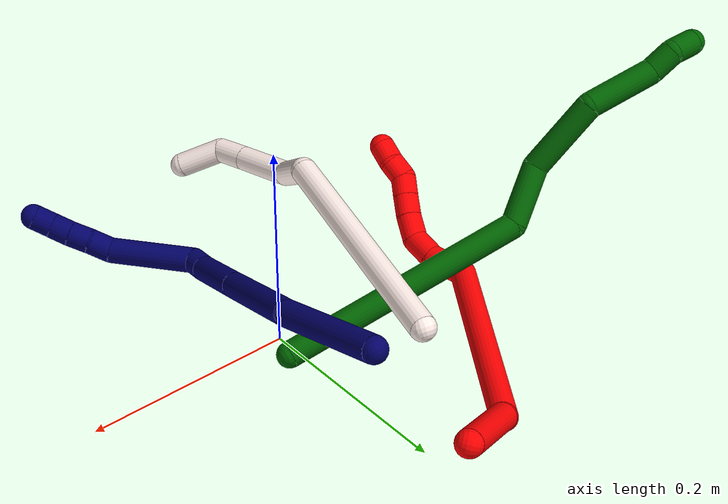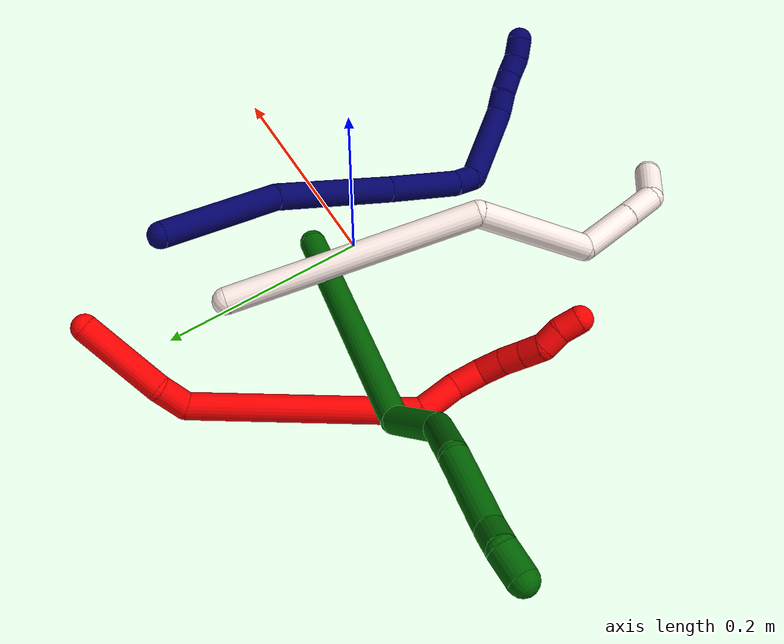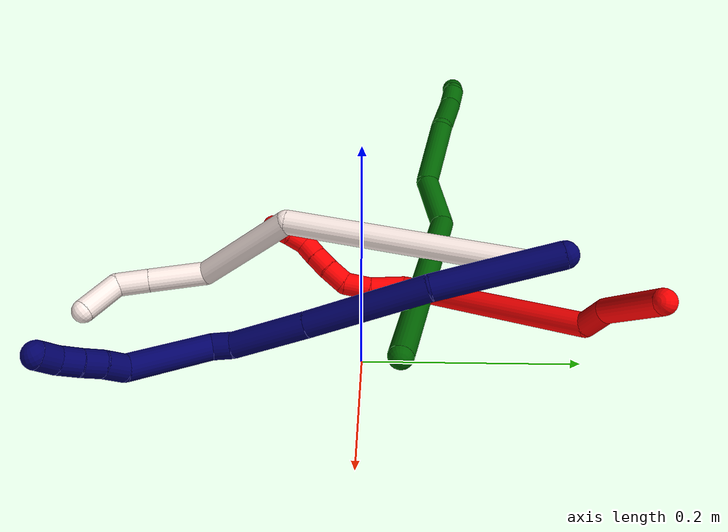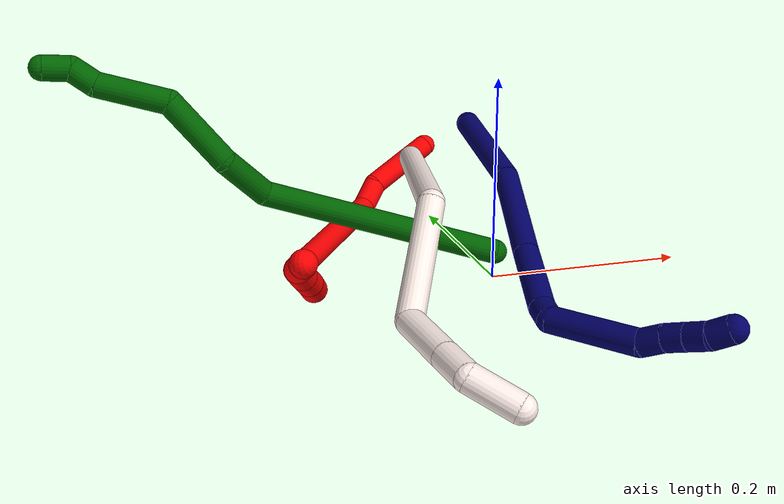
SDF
<sdf version="1.7">
 <world name="default">
  <model name="2">
   <static>0</static>
   <link name="2">
    <collision name="collision-cylinder-e_1_1_4">
     <pose>-0.031742 -0.020879 0.017692 0.867827 -0.859294 -0.41841</pose>
     <geometry><cylinder><radius>0.0125</radius><length>0.083821</length></cylinder></geometry>
     <surface>
      <friction><ode><mu>1.16</mu><mu2>1.16</mu2><slip1>0</slip1><slip2>0</slip2></ode></friction>
      <contact><ode><kp>1e+06</kp><kd>1</kd><max_vel>0</max_vel><min_depth>0.001</min_depth></ode></contact>
     </surface>
    </collision>
    <visual name="visual-cylinder-e_1_1_4">
     <pose>-0.031742 -0.020879 0.017692 0.867827 -0.859294 -0.41841</pose>
     <geometry><cylinder><radius>0.0125</radius><length>0.083821</length></cylinder></geometry>
     <material><ambient>1 0 0 1</ambient></material>
    </visual>
    <collision name="collision-cylinder-e_2_4_5">
     <pose>-0.078524 -0.044877 0.039244 0.679719 -1.25207 -0.500593</pose>
     <geometry><cylinder><radius>0.0125</radius><length>0.031674</length></cylinder></geometry>
     <surface>
      <friction><ode><mu>1.16</mu><mu2>1.16</mu2><slip1>0</slip1><slip2>0</slip2></ode></friction>
      <contact><ode><kp>1e+06</kp><kd>1</kd><max_vel>0</max_vel><min_depth>0.001</min_depth></ode></contact>
     </surface>
    </collision>
    <visual name="visual-cylinder-e_2_4_5">
     <pose>-0.078524 -0.044877 0.039244 0.679719 -1.25207 -0.500593</pose>
     <geometry><cylinder><radius>0.0125</radius><length>0.031674</length></cylinder></geometry>
     <material><ambient>1 0 0 1</ambient></material>
    </visual>
    <collision name="collision-cylinder-e_3_5_6">
     <pose>-0.161178 -0.126169 0.023517 1.8163 -0.698072 -0.872771</pose>
     <geometry><cylinder><radius>0.0125</radius><length>0.210394</length></cylinder></geometry>
     <surface>
      <friction><ode><mu>1.16</mu><mu2>1.16</mu2><slip1>0</slip1><slip2>0</slip2></ode></friction>
      <contact><ode><kp>1e+06</kp><kd>1</kd><max_vel>0</max_vel><min_depth>0.001</min_depth></ode></contact>
     </surface>
    </collision>
    <visual name="visual-cylinder-e_3_5_6">
     <pose>-0.161178 -0.126169 0.023517 1.8163 -0.698072 -0.872771</pose>
     <geometry><cylinder><radius>0.0125</radius><length>0.210394</length></cylinder></geometry>
     <material><ambient>1 0 0 1</ambient></material>
    </visual>
    <collision name="collision-cylinder-e_4_6_7">
     <pose>-0.239419 -0.211247 -0.010815 2.70367 -0.578225 -1.85699</pose>
     <geometry><cylinder><radius>0.0125</radius><length>0.038884</length></cylinder></geometry>
     <surface>
      <friction><ode><mu>1.16</mu><mu2>1.16</mu2><slip1>0</slip1><slip2>0</slip2></ode></friction>
      <contact><ode><kp>1e+06</kp><kd>1</kd><max_vel>0</max_vel><min_depth>0.001</min_depth></ode></contact>
     </surface>
    </collision>
    <visual name="visual-cylinder-e_4_6_7">
     <pose>-0.239419 -0.211247 -0.010815 2.70367 -0.578225 -1.85699</pose>
     <geometry><cylinder><radius>0.0125</radius><length>0.038884</length></cylinder></geometry>
     <material><ambient>1 0 0 1</ambient></material>
    </visual>
    <collision name="collision-cylinder-e_5_7_8">
     <pose>-0.256734 -0.226708 -0.034839 2.39667 -0.487305 -1.13334</pose>
     <geometry><cylinder><radius>0.0125</radius><length>0.02857</length></cylinder></geometry>
     <surface>
      <friction><ode><mu>1.16</mu><mu2>1.16</mu2><slip1>0</slip1><slip2>0</slip2></ode></friction>
      <contact><ode><kp>1e+06</kp><kd>1</kd><max_vel>0</max_vel><min_depth>0.001</min_depth></ode></contact>
     </surface>
    </collision>
    <visual name="visual-cylinder-e_5_7_8">
     <pose>-0.256734 -0.226708 -0.034839 2.39667 -0.487305 -1.13334</pose>
     <geometry><cylinder><radius>0.0125</radius><length>0.02857</length></cylinder></geometry>
     <material><ambient>1 0 0 1</ambient></material>
    </visual>
    <collision name="collision-cylinder-e_6_8_9">
     <pose>-0.26457 -0.24627 -0.049719 2.04156 -0.092674 -0.150971</pose>
     <geometry><cylinder><radius>0.0125</radius><length>0.024804</length></cylinder></geometry>
     <surface>
      <friction><ode><mu>1.16</mu><mu2>1.16</mu2><slip1>0</slip1><slip2>0</slip2></ode></friction>
      <contact><ode><kp>1e+06</kp><kd>1</kd><max_vel>0</max_vel><min_depth>0.001</min_depth></ode></contact>
     </surface>
    </collision>
    <visual name="visual-cylinder-e_6_8_9">
     <pose>-0.26457 -0.24627 -0.049719 2.04156 -0.092674 -0.150971</pose>
     <geometry><cylinder><radius>0.0125</radius><length>0.024804</length></cylinder></geometry>
     <material><ambient>1 0 0 1</ambient></material>
    </visual>
    <collision name="collision-cylinder-e_7_9_10">
     <pose>-0.266473 -0.267248 -0.059066 1.93013 -0.070788 -0.102163</pose>
     <geometry><cylinder><radius>0.0125</radius><length>0.021358</length></cylinder></geometry>
     <surface>
      <friction><ode><mu>1.16</mu><mu2>1.16</mu2><slip1>0</slip1><slip2>0</slip2></ode></friction>
      <contact><ode><kp>1e+06</kp><kd>1</kd><max_vel>0</max_vel><min_depth>0.001</min_depth></ode></contact>
     </surface>
    </collision>
    <visual name="visual-cylinder-e_7_9_10">
     <pose>-0.266473 -0.267248 -0.059066 1.93013 -0.070788 -0.102163</pose>
     <geometry><cylinder><radius>0.0125</radius><length>0.021358</length></cylinder></geometry>
     <material><ambient>1 0 0 1</ambient></material>
    </visual>
    <collision name="collision-cylinder-e_8_10_11">
     <pose>-0.267376 -0.286754 -0.06627 1.9187 -0.014569 -0.020781</pose>
     <geometry><cylinder><radius>0.0125</radius><length>0.020286</length></cylinder></geometry>
     <surface>
      <friction><ode><mu>1.16</mu><mu2>1.16</mu2><slip1>0</slip1><slip2>0</slip2></ode></friction>
      <contact><ode><kp>1e+06</kp><kd>1</kd><max_vel>0</max_vel><min_depth>0.001</min_depth></ode></contact>
     </surface>
    </collision>
    <visual name="visual-cylinder-e_8_10_11">
     <pose>-0.267376 -0.286754 -0.06627 1.9187 -0.014569 -0.020781</pose>
     <geometry><cylinder><radius>0.0125</radius><length>0.020286</length></cylinder></geometry>
     <material><ambient>1 0 0 1</ambient></material>
    </visual>
    <collision name="collision-cylinder-e_9_11_12">
     <pose>-0.268238 -0.302738 -0.077357 2.43983 -0.071389 -0.194504</pose>
     <geometry><cylinder><radius>0.0125</radius><length>0.020032</length></cylinder></geometry>
     <surface>
      <friction><ode><mu>1.16</mu><mu2>1.16</mu2><slip1>0</slip1><slip2>0</slip2></ode></friction>
      <contact><ode><kp>1e+06</kp><kd>1</kd><max_vel>0</max_vel><min_depth>0.001</min_depth></ode></contact>
     </surface>
    </collision>
    <visual name="visual-cylinder-e_9_11_12">
     <pose>-0.268238 -0.302738 -0.077357 2.43983 -0.071389 -0.194504</pose>
     <geometry><cylinder><radius>0.0125</radius><length>0.020032</length></cylinder></geometry>
     <material><ambient>1 0 0 1</ambient></material>
    </visual>
    <collision name="collision-cylinder-e_10_12_2">
     <pose>-0.271558 -0.316816 -0.091052 2.24244 -0.261229 -0.531587</pose>
     <geometry><cylinder><radius>0.0125</radius><length>0.020175</length></cylinder></geometry>
     <surface>
      <friction><ode><mu>1.16</mu><mu2>1.16</mu2><slip1>0</slip1><slip2>0</slip2></ode></friction>
      <contact><ode><kp>1e+06</kp><kd>1</kd><max_vel>0</max_vel><min_depth>0.001</min_depth></ode></contact>
     </surface>
    </collision>
    <visual name="visual-cylinder-e_10_12_2">
     <pose>-0.271558 -0.316816 -0.091052 2.24244 -0.261229 -0.531587</pose>
     <geometry><cylinder><radius>0.0125</radius><length>0.020175</length></cylinder></geometry>
     <material><ambient>1 0 0 1</ambient></material>
    </visual>
    <collision name="collision-sphere-2">
     <pose>-0.274164 -0.324445 -0.097116 0 -0 0</pose>
     <geometry><sphere><radius>0.0125</radius></sphere></geometry>
     <surface>
      <friction><ode><mu>1.16</mu><mu2>1.16</mu2><slip1>0</slip1><slip2>0</slip2></ode></friction>
      <contact><ode><kp>1e+06</kp><kd>1</kd><max_vel>0</max_vel><min_depth>0.001</min_depth></ode></contact>
     </surface>
    </collision>
    <visual name="visual-sphere-2">
     <pose>-0.274164 -0.324445 -0.097116 0 -0 0</pose>
     <geometry><sphere><radius>0.0125</radius></sphere></geometry>
     <material><ambient>1 0 0 1</ambient></material>
    </visual>
    <collision name="collision-sphere-12">
     <pose>-0.268953 -0.309188 -0.084987 0 -0 0</pose>
     <geometry><sphere><radius>0.0125</radius></sphere></geometry>
     <surface>
      <friction><ode><mu>1.16</mu><mu2>1.16</mu2><slip1>0</slip1><slip2>0</slip2></ode></friction>
      <contact><ode><kp>1e+06</kp><kd>1</kd><max_vel>0</max_vel><min_depth>0.001</min_depth></ode></contact>
     </surface>
    </collision>
    <visual name="visual-sphere-12">
     <pose>-0.268953 -0.309188 -0.084987 0 -0 0</pose>
     <geometry><sphere><radius>0.0125</radius></sphere></geometry>
     <material><ambient>1 0 0 1</ambient></material>
    </visual>
    <collision name="collision-sphere-11">
     <pose>-0.267524 -0.296289 -0.069728 0 -0 0</pose>
     <geometry><sphere><radius>0.0125</radius></sphere></geometry>
     <surface>
      <friction><ode><mu>1.16</mu><mu2>1.16</mu2><slip1>0</slip1><slip2>0</slip2></ode></friction>
      <contact><ode><kp>1e+06</kp><kd>1</kd><max_vel>0</max_vel><min_depth>0.001</min_depth></ode></contact>
     </surface>
    </collision>
    <visual name="visual-sphere-11">
     <pose>-0.267524 -0.296289 -0.069728 0 -0 0</pose>
     <geometry><sphere><radius>0.0125</radius></sphere></geometry>
     <material><ambient>1 0 0 1</ambient></material>
    </visual>
    <collision name="collision-sphere-10">
     <pose>-0.267229 -0.27722 -0.062812 0 -0 0</pose>
     <geometry><sphere><radius>0.0125</radius></sphere></geometry>
     <surface>
      <friction><ode><mu>1.16</mu><mu2>1.16</mu2><slip1>0</slip1><slip2>0</slip2></ode></friction>
      <contact><ode><kp>1e+06</kp><kd>1</kd><max_vel>0</max_vel><min_depth>0.001</min_depth></ode></contact>
     </surface>
    </collision>
    <visual name="visual-sphere-10">
     <pose>-0.267229 -0.27722 -0.062812 0 -0 0</pose>
     <geometry><sphere><radius>0.0125</radius></sphere></geometry>
     <material><ambient>1 0 0 1</ambient></material>
    </visual>
    <collision name="collision-sphere-9">
     <pose>-0.265718 -0.257276 -0.05532 0 -0 0</pose>
     <geometry><sphere><radius>0.0125</radius></sphere></geometry>
     <surface>
      <friction><ode><mu>1.16</mu><mu2>1.16</mu2><slip1>0</slip1><slip2>0</slip2></ode></friction>
      <contact><ode><kp>1e+06</kp><kd>1</kd><max_vel>0</max_vel><min_depth>0.001</min_depth></ode></contact>
     </surface>
    </collision>
    <visual name="visual-sphere-9">
     <pose>-0.265718 -0.257276 -0.05532 0 -0 0</pose>
     <geometry><sphere><radius>0.0125</radius></sphere></geometry>
     <material><ambient>1 0 0 1</ambient></material>
    </visual>
    <collision name="collision-sphere-4">
     <pose>-0.063485 -0.041757 0.035384 0 -0 0</pose>
     <geometry><sphere><radius>0.0125</radius></sphere></geometry>
     <surface>
      <friction><ode><mu>1.16</mu><mu2>1.16</mu2><slip1>0</slip1><slip2>0</slip2></ode></friction>
      <contact><ode><kp>1e+06</kp><kd>1</kd><max_vel>0</max_vel><min_depth>0.001</min_depth></ode></contact>
     </surface>
    </collision>
    <visual name="visual-sphere-4">
     <pose>-0.063485 -0.041757 0.035384 0 -0 0</pose>
     <geometry><sphere><radius>0.0125</radius></sphere></geometry>
     <material><ambient>1 0 0 1</ambient></material>
    </visual>
    <collision name="collision-sphere-1">
     <geometry><sphere><radius>0.0125</radius></sphere></geometry>
     <surface>
      <friction><ode><mu>1.16</mu><mu2>1.16</mu2><slip1>0</slip1><slip2>0</slip2></ode></friction>
      <contact><ode><kp>1e+06</kp><kd>1</kd><max_vel>0</max_vel><min_depth>0.001</min_depth></ode></contact>
     </surface>
    </collision>
    <visual name="visual-sphere-1">
     <geometry><sphere><radius>0.0125</radius></sphere></geometry>
     <material><ambient>1 0 0 1</ambient></material>
    </visual>
    <collision name="collision-sphere-8">
     <pose>-0.263422 -0.235265 -0.044118 0 -0 0</pose>
     <geometry><sphere><radius>0.0125</radius></sphere></geometry>
     <surface>
      <friction><ode><mu>1.16</mu><mu2>1.16</mu2><slip1>0</slip1><slip2>0</slip2></ode></friction>
      <contact><ode><kp>1e+06</kp><kd>1</kd><max_vel>0</max_vel><min_depth>0.001</min_depth></ode></contact>
     </surface>
    </collision>
    <visual name="visual-sphere-8">
     <pose>-0.263422 -0.235265 -0.044118 0 -0 0</pose>
     <geometry><sphere><radius>0.0125</radius></sphere></geometry>
     <material><ambient>1 0 0 1</ambient></material>
    </visual>
    <collision name="collision-sphere-5">
     <pose>-0.093564 -0.047996 0.043104 0 -0 0</pose>
     <geometry><sphere><radius>0.0125</radius></sphere></geometry>
     <surface>
      <friction><ode><mu>1.16</mu><mu2>1.16</mu2><slip1>0</slip1><slip2>0</slip2></ode></friction>
      <contact><ode><kp>1e+06</kp><kd>1</kd><max_vel>0</max_vel><min_depth>0.001</min_depth></ode></contact>
     </surface>
    </collision>
    <visual name="visual-sphere-5">
     <pose>-0.093564 -0.047996 0.043104 0 -0 0</pose>
     <geometry><sphere><radius>0.0125</radius></sphere></geometry>
     <material><ambient>1 0 0 1</ambient></material>
    </visual>
    <collision name="collision-sphere-6">
     <pose>-0.228793 -0.204343 0.00393 0 -0 0</pose>
     <geometry><sphere><radius>0.0125</radius></sphere></geometry>
     <surface>
      <friction><ode><mu>1.16</mu><mu2>1.16</mu2><slip1>0</slip1><slip2>0</slip2></ode></friction>
      <contact><ode><kp>1e+06</kp><kd>1</kd><max_vel>0</max_vel><min_depth>0.001</min_depth></ode></contact>
     </surface>
    </collision>
    <visual name="visual-sphere-6">
     <pose>-0.228793 -0.204343 0.00393 0 -0 0</pose>
     <geometry><sphere><radius>0.0125</radius></sphere></geometry>
     <material><ambient>1 0 0 1</ambient></material>
    </visual>
    <collision name="collision-sphere-7">
     <pose>-0.250045 -0.218151 -0.02556 0 -0 0</pose>
     <geometry><sphere><radius>0.0125</radius></sphere></geometry>
     <surface>
      <friction><ode><mu>1.16</mu><mu2>1.16</mu2><slip1>0</slip1><slip2>0</slip2></ode></friction>
      <contact><ode><kp>1e+06</kp><kd>1</kd><max_vel>0</max_vel><min_depth>0.001</min_depth></ode></contact>
     </surface>
    </collision>
    <visual name="visual-sphere-7">
     <pose>-0.250045 -0.218151 -0.02556 0 -0 0</pose>
     <geometry><sphere><radius>0.0125</radius></sphere></geometry>
     <material><ambient>1 0 0 1</ambient></material>
    </visual>
    <inertial>
     <pose>-0.168467 -0.148996 -0.001936 0 -0 0</pose>
     <mass>0.5</mass>
     <inertia>
      <ixx>-7.9e-05</ixx>
      <ixy>0</ixy>
      <ixz>0</ixz>
      <iyy>-0.000211</iyy>
      <iyz>0</iyz>
      <izz>0.001166</izz>
     </inertia>
    </inertial>
   </link>
   <pose>0.014621 0.266725 0.065844 -1.99662 -0.864245 1.12563</pose>
  </model>
  <model name="6">
   <static>0</static>
   <link name="6">
    <collision name="collision-cylinder-e_1_1_4">
     <pose>-0.036697 -0.004386 0.11533 0.038014 -0.307849 -0.005899</pose>
     <geometry><cylinder><radius>0.0125</radius><length>0.242214</length></cylinder></geometry>
     <surface>
      <friction><ode><mu>1.16</mu><mu2>1.16</mu2><slip1>0</slip1><slip2>0</slip2></ode></friction>
      <contact><ode><kp>1e+06</kp><kd>1</kd><max_vel>0</max_vel><min_depth>0.001</min_depth></ode></contact>
     </surface>
    </collision>
    <visual name="visual-cylinder-e_1_1_4">
     <pose>-0.036697 -0.004386 0.11533 0.038014 -0.307849 -0.005899</pose>
     <geometry><cylinder><radius>0.0125</radius><length>0.242214</length></cylinder></geometry>
     <material><ambient>0 0.392157 0.003922 1</ambient></material>
    </visual>
    <collision name="collision-cylinder-e_2_4_5">
     <pose>-0.086013 0.00815 0.251425 -0.683811 -0.440288 0.158937</pose>
     <geometry><cylinder><radius>0.0125</radius><length>0.059223</length></cylinder></geometry>
     <surface>
      <friction><ode><mu>1.16</mu><mu2>1.16</mu2><slip1>0</slip1><slip2>0</slip2></ode></friction>
      <contact><ode><kp>1e+06</kp><kd>1</kd><max_vel>0</max_vel><min_depth>0.001</min_depth></ode></contact>
     </surface>
    </collision>
    <visual name="visual-cylinder-e_2_4_5">
     <pose>-0.086013 0.00815 0.251425 -0.683811 -0.440288 0.158937</pose>
     <geometry><cylinder><radius>0.0125</radius><length>0.059223</length></cylinder></geometry>
     <material><ambient>0 0.392157 0.003922 1</ambient></material>
    </visual>
    <collision name="collision-cylinder-e_3_5_6">
     <pose>-0.126585 0.03164 0.297078 -0.257964 -0.826558 0.113636</pose>
     <geometry><cylinder><radius>0.0125</radius><length>0.075994</length></cylinder></geometry>
     <surface>
      <friction><ode><mu>1.16</mu><mu2>1.16</mu2><slip1>0</slip1><slip2>0</slip2></ode></friction>
      <contact><ode><kp>1e+06</kp><kd>1</kd><max_vel>0</max_vel><min_depth>0.001</min_depth></ode></contact>
     </surface>
    </collision>
    <visual name="visual-cylinder-e_3_5_6">
     <pose>-0.126585 0.03164 0.297078 -0.257964 -0.826558 0.113636</pose>
     <geometry><cylinder><radius>0.0125</radius><length>0.075994</length></cylinder></geometry>
     <material><ambient>0 0.392157 0.003922 1</ambient></material>
    </visual>
    <collision name="collision-cylinder-e_4_6_7">
     <pose>-0.16443 0.036757 0.355528 0.043169 -0.286439 -0.006226</pose>
     <geometry><cylinder><radius>0.0125</radius><length>0.070041</length></cylinder></geometry>
     <surface>
      <friction><ode><mu>1.16</mu><mu2>1.16</mu2><slip1>0</slip1><slip2>0</slip2></ode></friction>
      <contact><ode><kp>1e+06</kp><kd>1</kd><max_vel>0</max_vel><min_depth>0.001</min_depth></ode></contact>
     </surface>
    </collision>
    <visual name="visual-cylinder-e_4_6_7">
     <pose>-0.16443 0.036757 0.355528 0.043169 -0.286439 -0.006226</pose>
     <geometry><cylinder><radius>0.0125</radius><length>0.070041</length></cylinder></geometry>
     <material><ambient>0 0.392157 0.003922 1</ambient></material>
    </visual>
    <collision name="collision-cylinder-e_5_7_8">
     <pose>-0.181803 0.036853 0.399821 -0.143122 -0.603816 0.044641</pose>
     <geometry><cylinder><radius>0.0125</radius><length>0.026342</length></cylinder></geometry>
     <surface>
      <friction><ode><mu>1.16</mu><mu2>1.16</mu2><slip1>0</slip1><slip2>0</slip2></ode></friction>
      <contact><ode><kp>1e+06</kp><kd>1</kd><max_vel>0</max_vel><min_depth>0.001</min_depth></ode></contact>
     </surface>
    </collision>
    <visual name="visual-cylinder-e_5_7_8">
     <pose>-0.181803 0.036853 0.399821 -0.143122 -0.603816 0.044641</pose>
     <geometry><cylinder><radius>0.0125</radius><length>0.026342</length></cylinder></geometry>
     <material><ambient>0 0.392157 0.003922 1</ambient></material>
    </visual>
    <collision name="collision-cylinder-e_6_8_2">
     <pose>-0.189761 0.038461 0.423636 -0.004714 -0.036659 8.6e-05</pose>
     <geometry><cylinder><radius>0.0125</radius><length>0.026186</length></cylinder></geometry>
     <surface>
      <friction><ode><mu>1.16</mu><mu2>1.16</mu2><slip1>0</slip1><slip2>0</slip2></ode></friction>
      <contact><ode><kp>1e+06</kp><kd>1</kd><max_vel>0</max_vel><min_depth>0.001</min_depth></ode></contact>
     </surface>
    </collision>
    <visual name="visual-cylinder-e_6_8_2">
     <pose>-0.189761 0.038461 0.423636 -0.004714 -0.036659 8.6e-05</pose>
     <geometry><cylinder><radius>0.0125</radius><length>0.026186</length></cylinder></geometry>
     <material><ambient>0 0.392157 0.003922 1</ambient></material>
    </visual>
    <collision name="collision-sphere-2">
     <pose>-0.190241 0.038523 0.436721 0 -0 0</pose>
     <geometry><sphere><radius>0.0125</radius></sphere></geometry>
     <surface>
      <friction><ode><mu>1.16</mu><mu2>1.16</mu2><slip1>0</slip1><slip2>0</slip2></ode></friction>
      <contact><ode><kp>1e+06</kp><kd>1</kd><max_vel>0</max_vel><min_depth>0.001</min_depth></ode></contact>
     </surface>
    </collision>
    <visual name="visual-sphere-2">
     <pose>-0.190241 0.038523 0.436721 0 -0 0</pose>
     <geometry><sphere><radius>0.0125</radius></sphere></geometry>
     <material><ambient>0 0.392157 0.003922 1</ambient></material>
    </visual>
    <collision name="collision-sphere-4">
     <pose>-0.073393 -0.008773 0.23066 0 -0 0</pose>
     <geometry><sphere><radius>0.0125</radius></sphere></geometry>
     <surface>
      <friction><ode><mu>1.16</mu><mu2>1.16</mu2><slip1>0</slip1><slip2>0</slip2></ode></friction>
      <contact><ode><kp>1e+06</kp><kd>1</kd><max_vel>0</max_vel><min_depth>0.001</min_depth></ode></contact>
     </surface>
    </collision>
    <visual name="visual-sphere-4">
     <pose>-0.073393 -0.008773 0.23066 0 -0 0</pose>
     <geometry><sphere><radius>0.0125</radius></sphere></geometry>
     <material><ambient>0 0.392157 0.003922 1</ambient></material>
    </visual>
    <collision name="collision-sphere-1">
     <geometry><sphere><radius>0.0125</radius></sphere></geometry>
     <surface>
      <friction><ode><mu>1.16</mu><mu2>1.16</mu2><slip1>0</slip1><slip2>0</slip2></ode></friction>
      <contact><ode><kp>1e+06</kp><kd>1</kd><max_vel>0</max_vel><min_depth>0.001</min_depth></ode></contact>
     </surface>
    </collision>
    <visual name="visual-sphere-1">
     <geometry><sphere><radius>0.0125</radius></sphere></geometry>
     <material><ambient>0 0.392157 0.003922 1</ambient></material>
    </visual>
    <collision name="collision-sphere-8">
     <pose>-0.189281 0.0384 0.410552 0 -0 0</pose>
     <geometry><sphere><radius>0.0125</radius></sphere></geometry>
     <surface>
      <friction><ode><mu>1.16</mu><mu2>1.16</mu2><slip1>0</slip1><slip2>0</slip2></ode></friction>
      <contact><ode><kp>1e+06</kp><kd>1</kd><max_vel>0</max_vel><min_depth>0.001</min_depth></ode></contact>
     </surface>
    </collision>
    <visual name="visual-sphere-8">
     <pose>-0.189281 0.0384 0.410552 0 -0 0</pose>
     <geometry><sphere><radius>0.0125</radius></sphere></geometry>
     <material><ambient>0 0.392157 0.003922 1</ambient></material>
    </visual>
    <collision name="collision-sphere-5">
     <pose>-0.098634 0.025073 0.27219 0 -0 0</pose>
     <geometry><sphere><radius>0.0125</radius></sphere></geometry>
     <surface>
      <friction><ode><mu>1.16</mu><mu2>1.16</mu2><slip1>0</slip1><slip2>0</slip2></ode></friction>
      <contact><ode><kp>1e+06</kp><kd>1</kd><max_vel>0</max_vel><min_depth>0.001</min_depth></ode></contact>
     </surface>
    </collision>
    <visual name="visual-sphere-5">
     <pose>-0.098634 0.025073 0.27219 0 -0 0</pose>
     <geometry><sphere><radius>0.0125</radius></sphere></geometry>
     <material><ambient>0 0.392157 0.003922 1</ambient></material>
    </visual>
    <collision name="collision-sphere-6">
     <pose>-0.154536 0.038206 0.321966 0 -0 0</pose>
     <geometry><sphere><radius>0.0125</radius></sphere></geometry>
     <surface>
      <friction><ode><mu>1.16</mu><mu2>1.16</mu2><slip1>0</slip1><slip2>0</slip2></ode></friction>
      <contact><ode><kp>1e+06</kp><kd>1</kd><max_vel>0</max_vel><min_depth>0.001</min_depth></ode></contact>
     </surface>
    </collision>
    <visual name="visual-sphere-6">
     <pose>-0.154536 0.038206 0.321966 0 -0 0</pose>
     <geometry><sphere><radius>0.0125</radius></sphere></geometry>
     <material><ambient>0 0.392157 0.003922 1</ambient></material>
    </visual>
    <collision name="collision-sphere-7">
     <pose>-0.174325 0.035307 0.38909 0 -0 0</pose>
     <geometry><sphere><radius>0.0125</radius></sphere></geometry>
     <surface>
      <friction><ode><mu>1.16</mu><mu2>1.16</mu2><slip1>0</slip1><slip2>0</slip2></ode></friction>
      <contact><ode><kp>1e+06</kp><kd>1</kd><max_vel>0</max_vel><min_depth>0.001</min_depth></ode></contact>
     </surface>
    </collision>
    <visual name="visual-sphere-7">
     <pose>-0.174325 0.035307 0.38909 0 -0 0</pose>
     <geometry><sphere><radius>0.0125</radius></sphere></geometry>
     <material><ambient>0 0.392157 0.003922 1</ambient></material>
    </visual>
    <inertial>
     <pose>-0.089754 0.012754 0.223856 0 -0 0</pose>
     <mass>0.5</mass>
     <inertia>
      <ixx>0.001201</ixx>
      <ixy>0</ixy>
      <ixz>0</ixz>
      <iyy>0.001286</iyy>
      <iyz>0</iyz>
      <izz>0.00047</izz>
     </inertia>
    </inertial>
   </link>
   <pose>0.016244 0.03597 0.012355 1.49428 1.03286 -1.65616</pose>
  </model>
  <model name="7">
   <static>0</static>
   <link name="7">
    <collision name="collision-cylinder-e_1_1_4">
     <pose>0.019179 -0.055381 0.005611 1.46982 0.331811 0.300392</pose>
     <geometry><cylinder><radius>0.0125</radius><length>0.117753</length></cylinder></geometry>
     <surface>
      <friction><ode><mu>1.16</mu><mu2>1.16</mu2><slip1>0</slip1><slip2>0</slip2></ode></friction>
      <contact><ode><kp>1e+06</kp><kd>1</kd><max_vel>0</max_vel><min_depth>0.001</min_depth></ode></contact>
     </surface>
    </collision>
    <visual name="visual-cylinder-e_1_1_4">
     <pose>0.019179 -0.055381 0.005611 1.46982 0.331811 0.300392</pose>
     <geometry><cylinder><radius>0.0125</radius><length>0.117753</length></cylinder></geometry>
     <material><ambient>0.003922 0 0.403922 1</ambient></material>
    </visual>
    <collision name="collision-cylinder-e_2_4_5">
     <pose>0.047631 -0.169287 0.008178 1.62278 0.156923 0.165263</pose>
     <geometry><cylinder><radius>0.0125</radius><length>0.118663</length></cylinder></geometry>
     <surface>
      <friction><ode><mu>1.16</mu><mu2>1.16</mu2><slip1>0</slip1><slip2>0</slip2></ode></friction>
      <contact><ode><kp>1e+06</kp><kd>1</kd><max_vel>0</max_vel><min_depth>0.001</min_depth></ode></contact>
     </surface>
    </collision>
    <visual name="visual-cylinder-e_2_4_5">
     <pose>0.047631 -0.169287 0.008178 1.62278 0.156923 0.165263</pose>
     <geometry><cylinder><radius>0.0125</radius><length>0.118663</length></cylinder></geometry>
     <material><ambient>0.003922 0 0.403922 1</ambient></material>
    </visual>
    <collision name="collision-cylinder-e_3_5_6">
     <pose>0.063045 -0.264945 0.003968 1.60214 0.163816 0.169007</pose>
     <geometry><cylinder><radius>0.0125</radius><length>0.075315</length></cylinder></geometry>
     <surface>
      <friction><ode><mu>1.16</mu><mu2>1.16</mu2><slip1>0</slip1><slip2>0</slip2></ode></friction>
      <contact><ode><kp>1e+06</kp><kd>1</kd><max_vel>0</max_vel><min_depth>0.001</min_depth></ode></contact>
     </surface>
    </collision>
    <visual name="visual-cylinder-e_3_5_6">
     <pose>0.063045 -0.264945 0.003968 1.60214 0.163816 0.169007</pose>
     <geometry><cylinder><radius>0.0125</radius><length>0.075315</length></cylinder></geometry>
     <material><ambient>0.003922 0 0.403922 1</ambient></material>
    </visual>
    <collision name="collision-cylinder-e_4_6_7">
     <pose>0.071323 -0.312098 0.004974 1.35746 0.205577 0.166015</pose>
     <geometry><cylinder><radius>0.0125</radius><length>0.02094</length></cylinder></geometry>
     <surface>
      <friction><ode><mu>1.16</mu><mu2>1.16</mu2><slip1>0</slip1><slip2>0</slip2></ode></friction>
      <contact><ode><kp>1e+06</kp><kd>1</kd><max_vel>0</max_vel><min_depth>0.001</min_depth></ode></contact>
     </surface>
    </collision>
    <visual name="visual-cylinder-e_4_6_7">
     <pose>0.071323 -0.312098 0.004974 1.35746 0.205577 0.166015</pose>
     <geometry><cylinder><radius>0.0125</radius><length>0.02094</length></cylinder></geometry>
     <material><ambient>0.003922 0 0.403922 1</ambient></material>
    </visual>
    <collision name="collision-cylinder-e_5_7_8">
     <pose>0.106702 -0.343467 0.022709 0.940896 0.89917 0.481266</pose>
     <geometry><cylinder><radius>0.0125</radius><length>0.084929</length></cylinder></geometry>
     <surface>
      <friction><ode><mu>1.16</mu><mu2>1.16</mu2><slip1>0</slip1><slip2>0</slip2></ode></friction>
      <contact><ode><kp>1e+06</kp><kd>1</kd><max_vel>0</max_vel><min_depth>0.001</min_depth></ode></contact>
     </surface>
    </collision>
    <visual name="visual-cylinder-e_5_7_8">
     <pose>0.106702 -0.343467 0.022709 0.940896 0.89917 0.481266</pose>
     <geometry><cylinder><radius>0.0125</radius><length>0.084929</length></cylinder></geometry>
     <material><ambient>0.003922 0 0.403922 1</ambient></material>
    </visual>
    <collision name="collision-cylinder-e_6_8_9">
     <pose>0.147164 -0.367861 0.046185 0.367016 0.705603 0.136463</pose>
     <geometry><cylinder><radius>0.0125</radius><length>0.022265</length></cylinder></geometry>
     <surface>
      <friction><ode><mu>1.16</mu><mu2>1.16</mu2><slip1>0</slip1><slip2>0</slip2></ode></friction>
      <contact><ode><kp>1e+06</kp><kd>1</kd><max_vel>0</max_vel><min_depth>0.001</min_depth></ode></contact>
     </surface>
    </collision>
    <visual name="visual-cylinder-e_6_8_9">
     <pose>0.147164 -0.367861 0.046185 0.367016 0.705603 0.136463</pose>
     <geometry><cylinder><radius>0.0125</radius><length>0.022265</length></cylinder></geometry>
     <material><ambient>0.003922 0 0.403922 1</ambient></material>
    </visual>
    <collision name="collision-cylinder-e_7_9_10">
     <pose>0.161116 -0.374862 0.060374 0.562664 0.73665 0.222151</pose>
     <geometry><cylinder><radius>0.0125</radius><length>0.020045</length></cylinder></geometry>
     <surface>
      <friction><ode><mu>1.16</mu><mu2>1.16</mu2><slip1>0</slip1><slip2>0</slip2></ode></friction>
      <contact><ode><kp>1e+06</kp><kd>1</kd><max_vel>0</max_vel><min_depth>0.001</min_depth></ode></contact>
     </surface>
    </collision>
    <visual name="visual-cylinder-e_7_9_10">
     <pose>0.161116 -0.374862 0.060374 0.562664 0.73665 0.222151</pose>
     <geometry><cylinder><radius>0.0125</radius><length>0.020045</length></cylinder></geometry>
     <material><ambient>0.003922 0 0.403922 1</ambient></material>
    </visual>
    <collision name="collision-cylinder-e_8_10_11">
     <pose>0.173993 -0.383311 0.07316 0.603884 0.660685 0.212801</pose>
     <geometry><cylinder><radius>0.0125</radius><length>0.020023</length></cylinder></geometry>
     <surface>
      <friction><ode><mu>1.16</mu><mu2>1.16</mu2><slip1>0</slip1><slip2>0</slip2></ode></friction>
      <contact><ode><kp>1e+06</kp><kd>1</kd><max_vel>0</max_vel><min_depth>0.001</min_depth></ode></contact>
     </surface>
    </collision>
    <visual name="visual-cylinder-e_8_10_11">
     <pose>0.173993 -0.383311 0.07316 0.603884 0.660685 0.212801</pose>
     <geometry><cylinder><radius>0.0125</radius><length>0.020023</length></cylinder></geometry>
     <material><ambient>0.003922 0 0.403922 1</ambient></material>
    </visual>
    <collision name="collision-cylinder-e_9_11_2">
     <pose>0.186452 -0.38984 0.087191 0.264762 0.68088 0.094269</pose>
     <geometry><cylinder><radius>0.0125</radius><length>0.020066</length></cylinder></geometry>
     <surface>
      <friction><ode><mu>1.16</mu><mu2>1.16</mu2><slip1>0</slip1><slip2>0</slip2></ode></friction>
      <contact><ode><kp>1e+06</kp><kd>1</kd><max_vel>0</max_vel><min_depth>0.001</min_depth></ode></contact>
     </surface>
    </collision>
    <visual name="visual-cylinder-e_9_11_2">
     <pose>0.186452 -0.38984 0.087191 0.264762 0.68088 0.094269</pose>
     <geometry><cylinder><radius>0.0125</radius><length>0.020066</length></cylinder></geometry>
     <material><ambient>0.003922 0 0.403922 1</ambient></material>
    </visual>
    <collision name="collision-sphere-2">
     <pose>0.192768 -0.39188 0.094716 0 -0 0</pose>
     <geometry><sphere><radius>0.0125</radius></sphere></geometry>
     <surface>
      <friction><ode><mu>1.16</mu><mu2>1.16</mu2><slip1>0</slip1><slip2>0</slip2></ode></friction>
      <contact><ode><kp>1e+06</kp><kd>1</kd><max_vel>0</max_vel><min_depth>0.001</min_depth></ode></contact>
     </surface>
    </collision>
    <visual name="visual-sphere-2">
     <pose>0.192768 -0.39188 0.094716 0 -0 0</pose>
     <geometry><sphere><radius>0.0125</radius></sphere></geometry>
     <material><ambient>0.003922 0 0.403922 1</ambient></material>
    </visual>
    <collision name="collision-sphere-11">
     <pose>0.180136 -0.3878 0.079667 0 -0 0</pose>
     <geometry><sphere><radius>0.0125</radius></sphere></geometry>
     <surface>
      <friction><ode><mu>1.16</mu><mu2>1.16</mu2><slip1>0</slip1><slip2>0</slip2></ode></friction>
      <contact><ode><kp>1e+06</kp><kd>1</kd><max_vel>0</max_vel><min_depth>0.001</min_depth></ode></contact>
     </surface>
    </collision>
    <visual name="visual-sphere-11">
     <pose>0.180136 -0.3878 0.079667 0 -0 0</pose>
     <geometry><sphere><radius>0.0125</radius></sphere></geometry>
     <material><ambient>0.003922 0 0.403922 1</ambient></material>
    </visual>
    <collision name="collision-sphere-10">
     <pose>0.167849 -0.378822 0.066654 0 -0 0</pose>
     <geometry><sphere><radius>0.0125</radius></sphere></geometry>
     <surface>
      <friction><ode><mu>1.16</mu><mu2>1.16</mu2><slip1>0</slip1><slip2>0</slip2></ode></friction>
      <contact><ode><kp>1e+06</kp><kd>1</kd><max_vel>0</max_vel><min_depth>0.001</min_depth></ode></contact>
     </surface>
    </collision>
    <visual name="visual-sphere-10">
     <pose>0.167849 -0.378822 0.066654 0 -0 0</pose>
     <geometry><sphere><radius>0.0125</radius></sphere></geometry>
     <material><ambient>0.003922 0 0.403922 1</ambient></material>
    </visual>
    <collision name="collision-sphere-9">
     <pose>0.154383 -0.370902 0.054095 0 -0 0</pose>
     <geometry><sphere><radius>0.0125</radius></sphere></geometry>
     <surface>
      <friction><ode><mu>1.16</mu><mu2>1.16</mu2><slip1>0</slip1><slip2>0</slip2></ode></friction>
      <contact><ode><kp>1e+06</kp><kd>1</kd><max_vel>0</max_vel><min_depth>0.001</min_depth></ode></contact>
     </surface>
    </collision>
    <visual name="visual-sphere-9">
     <pose>0.154383 -0.370902 0.054095 0 -0 0</pose>
     <geometry><sphere><radius>0.0125</radius></sphere></geometry>
     <material><ambient>0.003922 0 0.403922 1</ambient></material>
    </visual>
    <collision name="collision-sphere-4">
     <pose>0.038359 -0.110763 0.011223 0 -0 0</pose>
     <geometry><sphere><radius>0.0125</radius></sphere></geometry>
     <surface>
      <friction><ode><mu>1.16</mu><mu2>1.16</mu2><slip1>0</slip1><slip2>0</slip2></ode></friction>
      <contact><ode><kp>1e+06</kp><kd>1</kd><max_vel>0</max_vel><min_depth>0.001</min_depth></ode></contact>
     </surface>
    </collision>
    <visual name="visual-sphere-4">
     <pose>0.038359 -0.110763 0.011223 0 -0 0</pose>
     <geometry><sphere><radius>0.0125</radius></sphere></geometry>
     <material><ambient>0.003922 0 0.403922 1</ambient></material>
    </visual>
    <collision name="collision-sphere-1">
     <geometry><sphere><radius>0.0125</radius></sphere></geometry>
     <surface>
      <friction><ode><mu>1.16</mu><mu2>1.16</mu2><slip1>0</slip1><slip2>0</slip2></ode></friction>
      <contact><ode><kp>1e+06</kp><kd>1</kd><max_vel>0</max_vel><min_depth>0.001</min_depth></ode></contact>
     </surface>
    </collision>
    <visual name="visual-sphere-1">
     <geometry><sphere><radius>0.0125</radius></sphere></geometry>
     <material><ambient>0.003922 0 0.403922 1</ambient></material>
    </visual>
    <collision name="collision-sphere-8">
     <pose>0.139944 -0.36482 0.038275 0 -0 0</pose>
     <geometry><sphere><radius>0.0125</radius></sphere></geometry>
     <surface>
      <friction><ode><mu>1.16</mu><mu2>1.16</mu2><slip1>0</slip1><slip2>0</slip2></ode></friction>
      <contact><ode><kp>1e+06</kp><kd>1</kd><max_vel>0</max_vel><min_depth>0.001</min_depth></ode></contact>
     </surface>
    </collision>
    <visual name="visual-sphere-8">
     <pose>0.139944 -0.36482 0.038275 0 -0 0</pose>
     <geometry><sphere><radius>0.0125</radius></sphere></geometry>
     <material><ambient>0.003922 0 0.403922 1</ambient></material>
    </visual>
    <collision name="collision-sphere-5">
     <pose>0.056903 -0.22781 0.005132 0 -0 0</pose>
     <geometry><sphere><radius>0.0125</radius></sphere></geometry>
     <surface>
      <friction><ode><mu>1.16</mu><mu2>1.16</mu2><slip1>0</slip1><slip2>0</slip2></ode></friction>
      <contact><ode><kp>1e+06</kp><kd>1</kd><max_vel>0</max_vel><min_depth>0.001</min_depth></ode></contact>
     </surface>
    </collision>
    <visual name="visual-sphere-5">
     <pose>0.056903 -0.22781 0.005132 0 -0 0</pose>
     <geometry><sphere><radius>0.0125</radius></sphere></geometry>
     <material><ambient>0.003922 0 0.403922 1</ambient></material>
    </visual>
    <collision name="collision-sphere-6">
     <pose>0.069186 -0.302081 0.002804 0 -0 0</pose>
     <geometry><sphere><radius>0.0125</radius></sphere></geometry>
     <surface>
      <friction><ode><mu>1.16</mu><mu2>1.16</mu2><slip1>0</slip1><slip2>0</slip2></ode></friction>
      <contact><ode><kp>1e+06</kp><kd>1</kd><max_vel>0</max_vel><min_depth>0.001</min_depth></ode></contact>
     </surface>
    </collision>
    <visual name="visual-sphere-6">
     <pose>0.069186 -0.302081 0.002804 0 -0 0</pose>
     <geometry><sphere><radius>0.0125</radius></sphere></geometry>
     <material><ambient>0.003922 0 0.403922 1</ambient></material>
    </visual>
    <collision name="collision-sphere-7">
     <pose>0.073461 -0.322115 0.007144 0 -0 0</pose>
     <geometry><sphere><radius>0.0125</radius></sphere></geometry>
     <surface>
      <friction><ode><mu>1.16</mu><mu2>1.16</mu2><slip1>0</slip1><slip2>0</slip2></ode></friction>
      <contact><ode><kp>1e+06</kp><kd>1</kd><max_vel>0</max_vel><min_depth>0.001</min_depth></ode></contact>
     </surface>
    </collision>
    <visual name="visual-sphere-7">
     <pose>0.073461 -0.322115 0.007144 0 -0 0</pose>
     <geometry><sphere><radius>0.0125</radius></sphere></geometry>
     <material><ambient>0.003922 0 0.403922 1</ambient></material>
    </visual>
    <inertial>
     <pose>0.073892 -0.226944 0.018832 0 -0 0</pose>
     <mass>0.5</mass>
     <inertia>
      <ixx>0.000442</ixx>
      <ixy>0</ixy>
      <ixz>0</ixz>
      <iyy>0.000129</iyy>
      <iyz>0</iyz>
      <izz>0.000229</izz>
     </inertia>
    </inertial>
   </link>
   <pose>0.035092 0.17393 0.113632 0.289734 0.259166 -0.271332</pose>
  </model>
  <model name="11">
   <static>0</static>
   <link name="11">
    <collision name="collision-cylinder-e_1_1_4">
     <pose>-0.032821 -0.076034 0.084009 0.735608 -0.281947 -0.109262</pose>
     <geometry><cylinder><radius>0.0125</radius><length>0.235931</length></cylinder></geometry>
     <surface>
      <friction><ode><mu>1.16</mu><mu2>1.16</mu2><slip1>0</slip1><slip2>0</slip2></ode></friction>
      <contact><ode><kp>1e+06</kp><kd>1</kd><max_vel>0</max_vel><min_depth>0.001</min_depth></ode></contact>
     </surface>
    </collision>
    <visual name="visual-cylinder-e_1_1_4">
     <pose>-0.032821 -0.076034 0.084009 0.735608 -0.281947 -0.109262</pose>
     <geometry><cylinder><radius>0.0125</radius><length>0.235931</length></cylinder></geometry>
     <material><ambient>1 0.933333 0.909804 1</ambient></material>
    </visual>
    <collision name="collision-cylinder-e_2_4_5">
     <pose>-0.101041 -0.202942 0.173521 1.46304 -0.605173 -0.546431</pose>
     <geometry><cylinder><radius>0.0125</radius><length>0.124444</length></cylinder></geometry>
     <surface>
      <friction><ode><mu>1.16</mu><mu2>1.16</mu2><slip1>0</slip1><slip2>0</slip2></ode></friction>
      <contact><ode><kp>1e+06</kp><kd>1</kd><max_vel>0</max_vel><min_depth>0.001</min_depth></ode></contact>
     </surface>
    </collision>
    <visual name="visual-cylinder-e_2_4_5">
     <pose>-0.101041 -0.202942 0.173521 1.46304 -0.605173 -0.546431</pose>
     <geometry><cylinder><radius>0.0125</radius><length>0.124444</length></cylinder></geometry>
     <material><ambient>1 0.933333 0.909804 1</ambient></material>
    </visual>
    <collision name="collision-cylinder-e_3_5_6">
     <pose>-0.134704 -0.279478 0.19458 1.02584 0.057753 0.032533</pose>
     <geometry><cylinder><radius>0.0125</radius><length>0.060115</length></cylinder></geometry>
     <surface>
      <friction><ode><mu>1.16</mu><mu2>1.16</mu2><slip1>0</slip1><slip2>0</slip2></ode></friction>
      <contact><ode><kp>1e+06</kp><kd>1</kd><max_vel>0</max_vel><min_depth>0.001</min_depth></ode></contact>
     </surface>
    </collision>
    <visual name="visual-cylinder-e_3_5_6">
     <pose>-0.134704 -0.279478 0.19458 1.02584 0.057753 0.032533</pose>
     <geometry><cylinder><radius>0.0125</radius><length>0.060115</length></cylinder></geometry>
     <material><ambient>1 0.933333 0.909804 1</ambient></material>
    </visual>
    <collision name="collision-cylinder-e_4_6_7">
     <pose>-0.131794 -0.319633 0.218825 1.03075 0.069397 0.03932</pose>
     <geometry><cylinder><radius>0.0125</radius><length>0.033881</length></cylinder></geometry>
     <surface>
      <friction><ode><mu>1.16</mu><mu2>1.16</mu2><slip1>0</slip1><slip2>0</slip2></ode></friction>
      <contact><ode><kp>1e+06</kp><kd>1</kd><max_vel>0</max_vel><min_depth>0.001</min_depth></ode></contact>
     </surface>
    </collision>
    <visual name="visual-cylinder-e_4_6_7">
     <pose>-0.131794 -0.319633 0.218825 1.03075 0.069397 0.03932</pose>
     <geometry><cylinder><radius>0.0125</radius><length>0.033881</length></cylinder></geometry>
     <material><ambient>1 0.933333 0.909804 1</ambient></material>
    </visual>
    <collision name="collision-cylinder-e_5_7_2">
     <pose>-0.117783 -0.352968 0.226644 1.61696 0.597593 0.624078</pose>
     <geometry><cylinder><radius>0.0125</radius><length>0.04563</length></cylinder></geometry>
     <surface>
      <friction><ode><mu>1.16</mu><mu2>1.16</mu2><slip1>0</slip1><slip2>0</slip2></ode></friction>
      <contact><ode><kp>1e+06</kp><kd>1</kd><max_vel>0</max_vel><min_depth>0.001</min_depth></ode></contact>
     </surface>
    </collision>
    <visual name="visual-cylinder-e_5_7_2">
     <pose>-0.117783 -0.352968 0.226644 1.61696 0.597593 0.624078</pose>
     <geometry><cylinder><radius>0.0125</radius><length>0.04563</length></cylinder></geometry>
     <material><ambient>1 0.933333 0.909804 1</ambient></material>
    </visual>
    <collision name="collision-sphere-2">
     <pose>-0.104946 -0.371809 0.225773 0 -0 0</pose>
     <geometry><sphere><radius>0.0125</radius></sphere></geometry>
     <surface>
      <friction><ode><mu>1.16</mu><mu2>1.16</mu2><slip1>0</slip1><slip2>0</slip2></ode></friction>
      <contact><ode><kp>1e+06</kp><kd>1</kd><max_vel>0</max_vel><min_depth>0.001</min_depth></ode></contact>
     </surface>
    </collision>
    <visual name="visual-sphere-2">
     <pose>-0.104946 -0.371809 0.225773 0 -0 0</pose>
     <geometry><sphere><radius>0.0125</radius></sphere></geometry>
     <material><ambient>1 0.933333 0.909804 1</ambient></material>
    </visual>
    <collision name="collision-sphere-7">
     <pose>-0.13062 -0.334128 0.227514 0 -0 0</pose>
     <geometry><sphere><radius>0.0125</radius></sphere></geometry>
     <surface>
      <friction><ode><mu>1.16</mu><mu2>1.16</mu2><slip1>0</slip1><slip2>0</slip2></ode></friction>
      <contact><ode><kp>1e+06</kp><kd>1</kd><max_vel>0</max_vel><min_depth>0.001</min_depth></ode></contact>
     </surface>
    </collision>
    <visual name="visual-sphere-7">
     <pose>-0.13062 -0.334128 0.227514 0 -0 0</pose>
     <geometry><sphere><radius>0.0125</radius></sphere></geometry>
     <material><ambient>1 0.933333 0.909804 1</ambient></material>
    </visual>
    <collision name="collision-sphere-6">
     <pose>-0.132969 -0.305138 0.210135 0 -0 0</pose>
     <geometry><sphere><radius>0.0125</radius></sphere></geometry>
     <surface>
      <friction><ode><mu>1.16</mu><mu2>1.16</mu2><slip1>0</slip1><slip2>0</slip2></ode></friction>
      <contact><ode><kp>1e+06</kp><kd>1</kd><max_vel>0</max_vel><min_depth>0.001</min_depth></ode></contact>
     </surface>
    </collision>
    <visual name="visual-sphere-6">
     <pose>-0.132969 -0.305138 0.210135 0 -0 0</pose>
     <geometry><sphere><radius>0.0125</radius></sphere></geometry>
     <material><ambient>1 0.933333 0.909804 1</ambient></material>
    </visual>
    <collision name="collision-sphere-5">
     <pose>-0.136439 -0.253817 0.179025 0 -0 0</pose>
     <geometry><sphere><radius>0.0125</radius></sphere></geometry>
     <surface>
      <friction><ode><mu>1.16</mu><mu2>1.16</mu2><slip1>0</slip1><slip2>0</slip2></ode></friction>
      <contact><ode><kp>1e+06</kp><kd>1</kd><max_vel>0</max_vel><min_depth>0.001</min_depth></ode></contact>
     </surface>
    </collision>
    <visual name="visual-sphere-5">
     <pose>-0.136439 -0.253817 0.179025 0 -0 0</pose>
     <geometry><sphere><radius>0.0125</radius></sphere></geometry>
     <material><ambient>1 0.933333 0.909804 1</ambient></material>
    </visual>
    <collision name="collision-sphere-1">
     <geometry><sphere><radius>0.0125</radius></sphere></geometry>
     <surface>
      <friction><ode><mu>1.16</mu><mu2>1.16</mu2><slip1>0</slip1><slip2>0</slip2></ode></friction>
      <contact><ode><kp>1e+06</kp><kd>1</kd><max_vel>0</max_vel><min_depth>0.001</min_depth></ode></contact>
     </surface>
    </collision>
    <visual name="visual-sphere-1">
     <geometry><sphere><radius>0.0125</radius></sphere></geometry>
     <material><ambient>1 0.933333 0.909804 1</ambient></material>
    </visual>
    <collision name="collision-sphere-4">
     <pose>-0.065642 -0.152067 0.168018 0 -0 0</pose>
     <geometry><sphere><radius>0.0125</radius></sphere></geometry>
     <surface>
      <friction><ode><mu>1.16</mu><mu2>1.16</mu2><slip1>0</slip1><slip2>0</slip2></ode></friction>
      <contact><ode><kp>1e+06</kp><kd>1</kd><max_vel>0</max_vel><min_depth>0.001</min_depth></ode></contact>
     </surface>
    </collision>
    <visual name="visual-sphere-4">
     <pose>-0.065642 -0.152067 0.168018 0 -0 0</pose>
     <geometry><sphere><radius>0.0125</radius></sphere></geometry>
     <material><ambient>1 0.933333 0.909804 1</ambient></material>
    </visual>
    <inertial>
     <pose>-0.07651 -0.173859 0.141733 0 -0 0</pose>
     <mass>0.5</mass>
     <inertia>
      <ixx>0.001012</ixx>
      <ixy>0</ixy>
      <ixz>0</ixz>
      <iyy>0.000706</iyy>
      <iyz>0</iyz>
      <izz>0.001288</izz>
     </inertia>
    </inertial>
   </link>
   <pose>-0.038312 0.151703 0.085653 0.655337 -0.236441 0.09025</pose>
  </model>
 </world>
</sdf>
